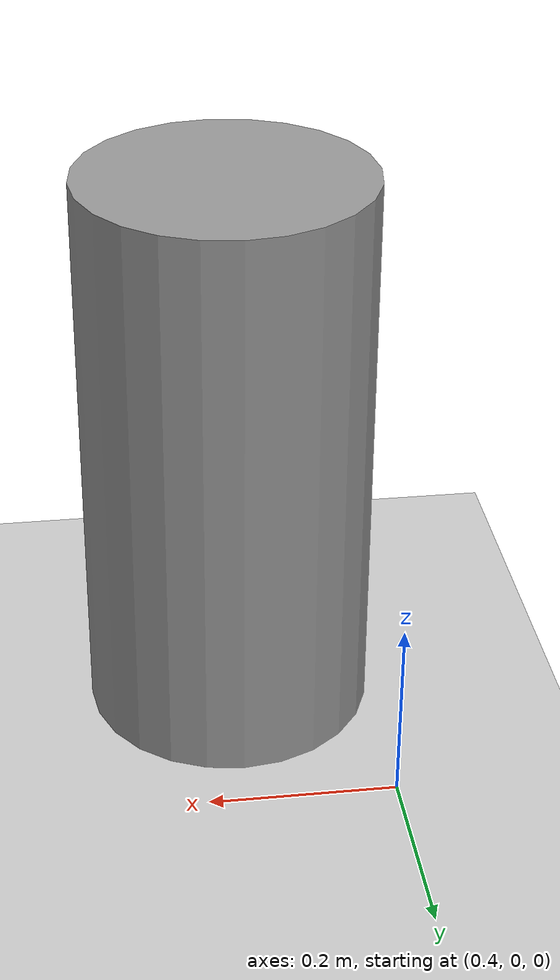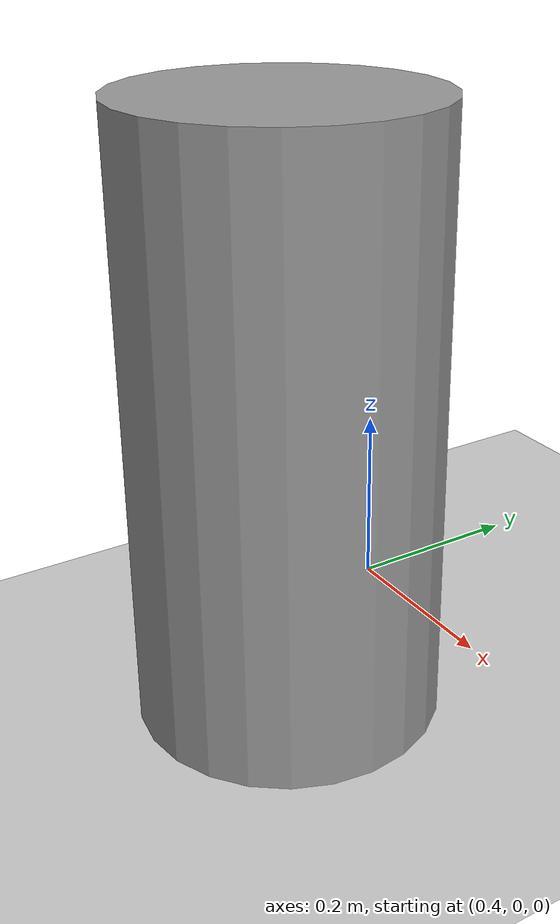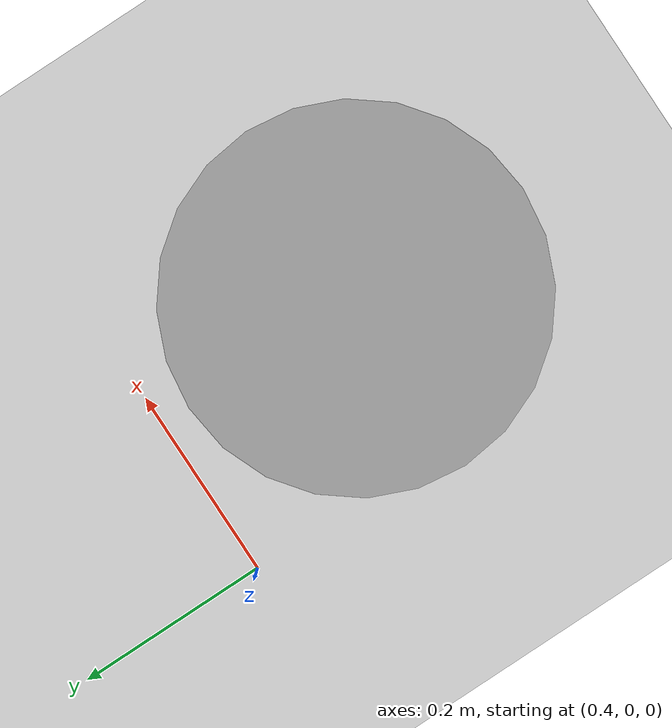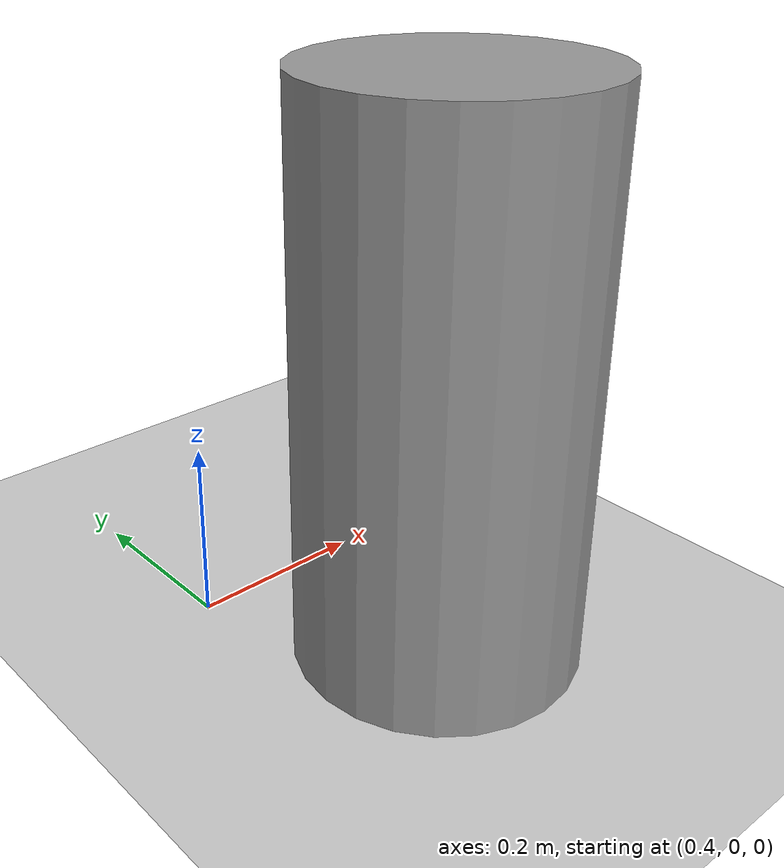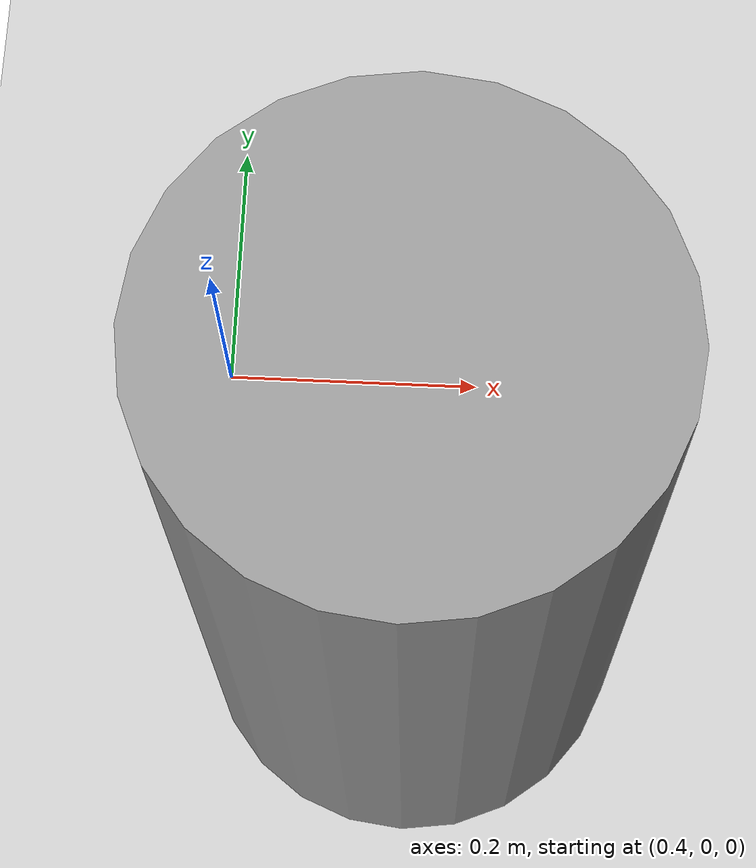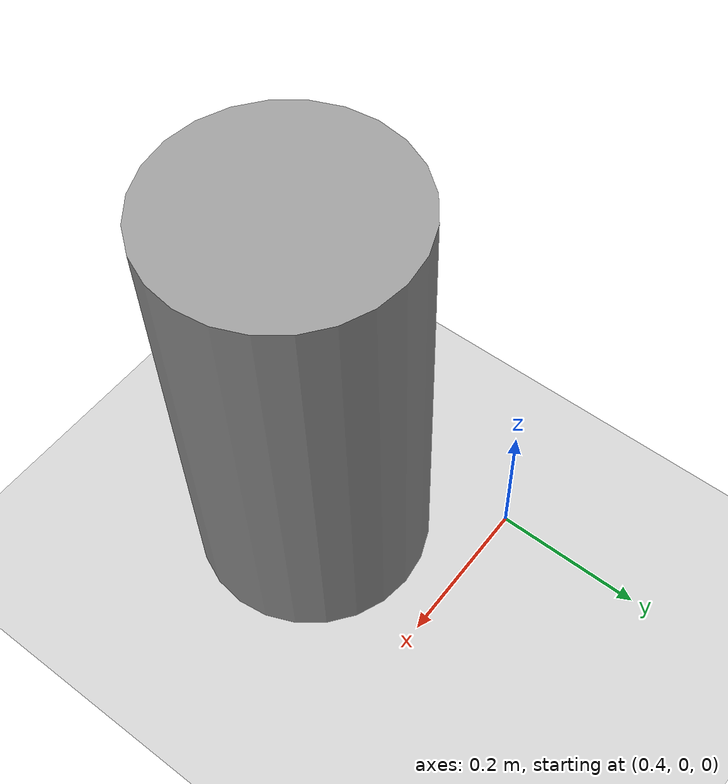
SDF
<sdf version="1.6">
 <world name="default">
  <model name="ground_plane">
   <static>1</static>
   <link name="link">
    <collision name="collision">
     <geometry><plane><normal>0 0 1</normal><size>100 100</size></plane></geometry>
     <surface>
      <contact><collide_bitmask>65535</collide_bitmask></contact>
      <friction><ode><mu>100</mu><mu2>50</mu2></ode></friction>
     </surface>
    </collision>
    <visual name="visual">
     <cast_shadows>0</cast_shadows>
     <geometry><plane><normal>0 0 1</normal><size>100 100</size></plane></geometry>
     <material>
      <script><uri>file://media/materials/scripts/gazebo.material</uri><name>Gazebo/Grey</name></script>
     </material>
    </visual>
   </link>
  </model>
  <model name="unit_cylinder">
   <pose>0.555583 -0.206441 0.306795 -0 -0 -0.001507</pose>
   <link name="link">
    <inertial>
     <mass>1</mass>
     <inertia><ixx>0.145833</ixx><ixy>0</ixy><ixz>0</ixz><iyy>0.145833</iyy><iyz>0</iyz><izz>0.125</izz></inertia>
    </inertial>
    <collision name="collision">
     <geometry><cylinder><radius>0.154795</radius><length>0.613609</length></cylinder></geometry>
    </collision>
    <visual name="visual">
     <geometry><cylinder><radius>0.154795</radius><length>0.613609</length></cylinder></geometry>
     <material>
      <script><name>Gazebo/Grey</name><uri>file://media/materials/scripts/gazebo.material</uri></script>
     </material>
    </visual>
   </link>
  </model>
 </world>
</sdf>
